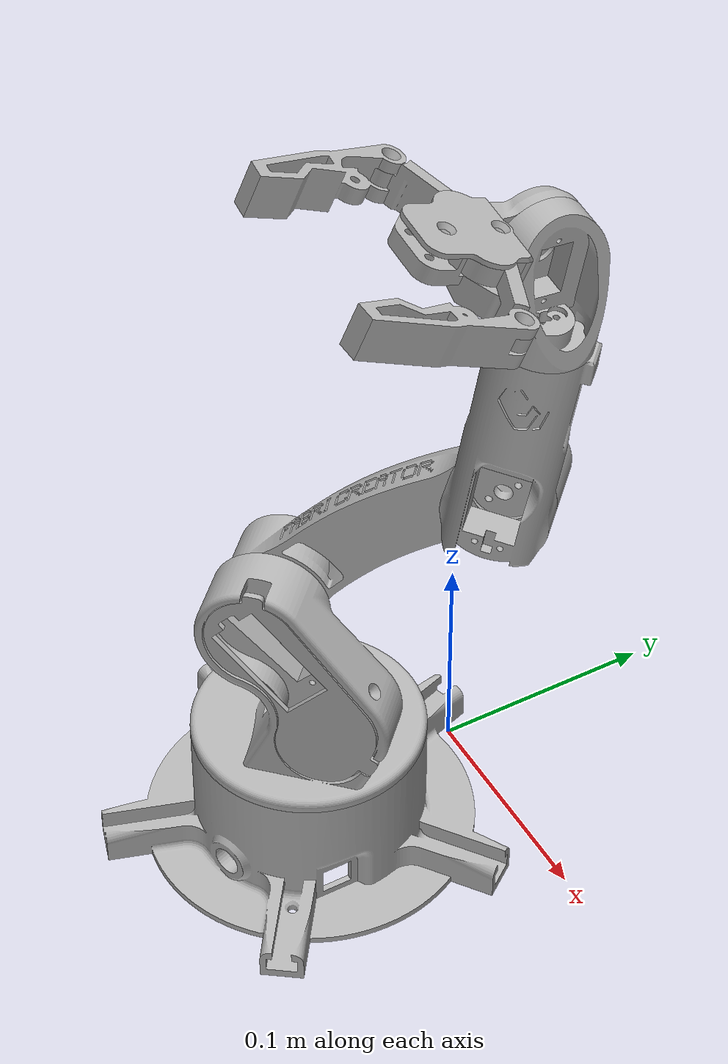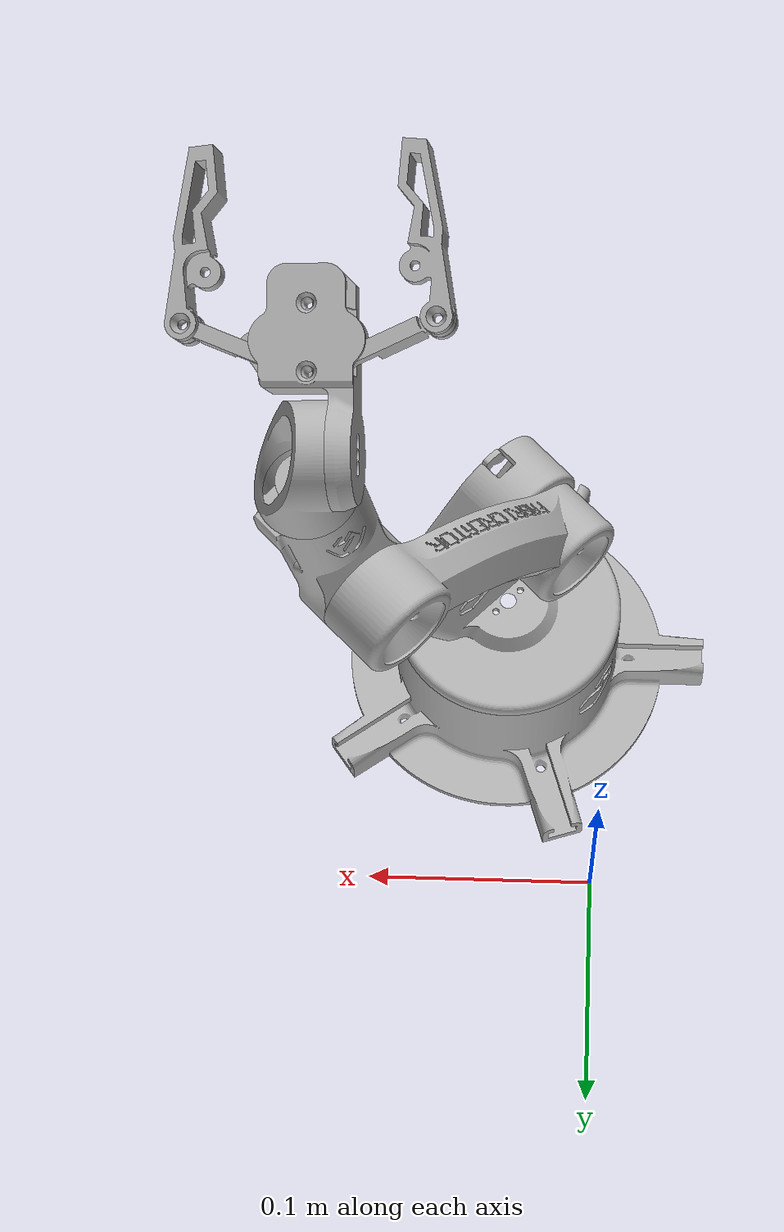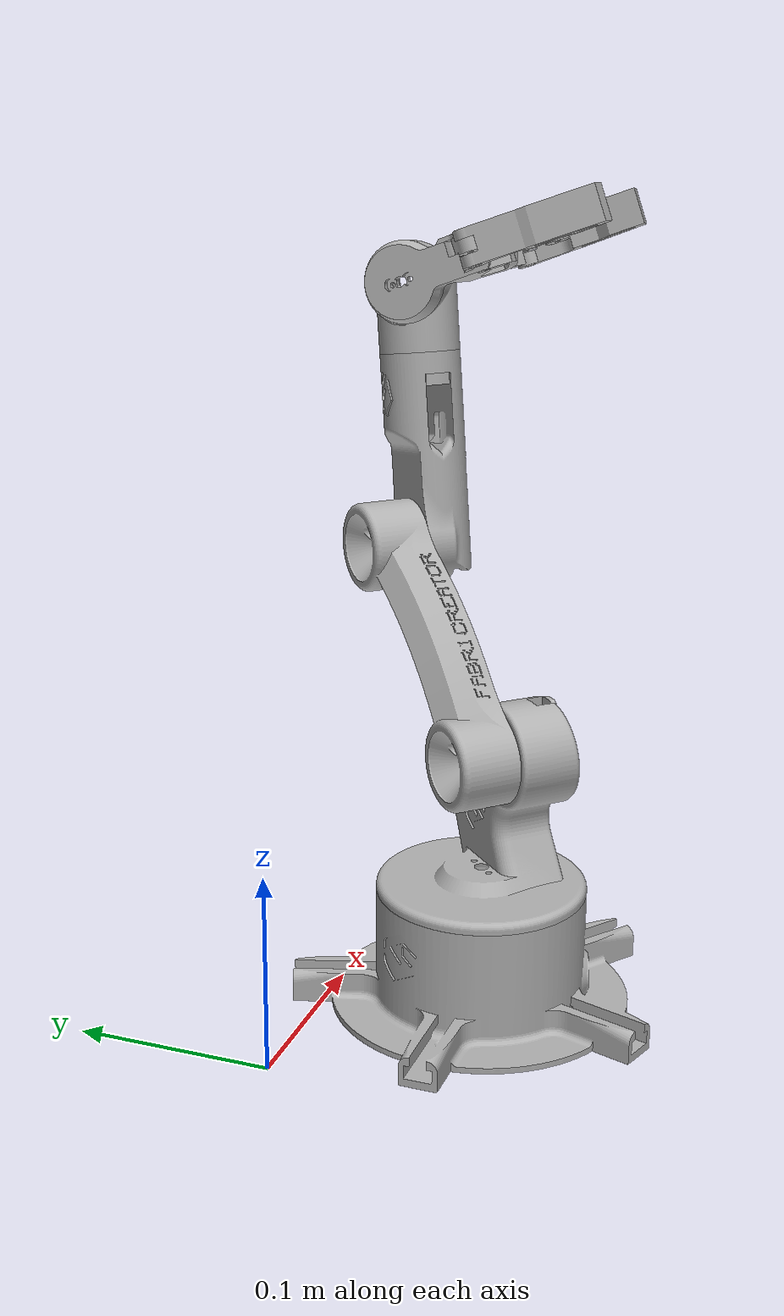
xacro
<?xml version="1.0"?>
<robot xmlns:xacro="http://www.ros.org/wiki/xacro" name="sabse_final_robo_dusra">
    <xacro:arg name="initial_positions_file" default="initial_positions.yaml" />

    <!-- Import sabse_final_robo_dusra urdf file -->
    <xacro:include filename="$(find sabse_final_robo_dusra_description)/urdf/sabse_final_robo_dusra.xacro" />

    <!-- Import control_xacro -->
    <xacro:include filename="sabse_final_robo_dusra.ros2_control.xacro" />

    <xacro:sabse_final_robo_dusra_ros2_control name="FakeSystem" initial_positions_file="$(arg initial_positions_file)"/>

</robot>

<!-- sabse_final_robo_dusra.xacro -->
<robot name="sabse_final_robo_dusra" xmlns:xacro="http://www.ros.org/wiki/xacro">

<xacro:include filename="$(find sabse_final_robo_dusra_description)/urdf/materials.xacro" />
<xacro:include filename="$(find sabse_final_robo_dusra_description)/urdf/sabse_final_robo_dusra.trans" />
<xacro:include filename="$(find sabse_final_robo_dusra_description)/urdf/sabse_final_robo_dusra.gazebo" />

<!-- Include ros2_control support -->
<xacro:arg name="use_ros2_control" default="false"/>
<xacro:if value="$(arg use_ros2_control)">
  <xacro:include filename="$(find sabse_final_robo_dusra_control)/config/sabse_final_robo_dusra_ros2_control.xacro" />
  <xacro:sabse_final_robo_dusra_ros2_control name="sabse_final_robo_dusra" prefix=""/>
</xacro:if>

<link name="base_link">
  <inertial>
    <origin xyz="0.039783283707411174 0.05583848628080968 0.09366101567392131" rpy="0 0 0"/>
    <mass value="0.912778498430855"/>
    <inertia ixx="0.001555" iyy="0.002663" izz="0.001642" ixy="1e-06" iyz="-6e-06" ixz="1.4e-05"/>
  </inertial>
  <visual>
    <origin xyz="0 0 0" rpy="0 0 0"/>
    <geometry>
      <mesh filename="file://$(find sabse_final_robo_dusra_description)/meshes/base_link.stl" scale="0.001 0.001 0.001"/>
    </geometry>
    <material name="silver"/>
  </visual>
  <collision>
    <origin xyz="0 0 0" rpy="0 0 0"/>
    <geometry>
      <mesh filename="file://$(find sabse_final_robo_dusra_description)/meshes/base_link.stl" scale="0.001 0.001 0.001"/>
    </geometry>
  </collision>
</link>

<link name="Pinza1_1">
  <inertial>
    <origin xyz="0.0041534278796213076 0.006440573334387356 0.029187575398014504" rpy="0 0 0"/>
    <mass value="0.05715084388035935"/>
    <inertia ixx="1.9e-05" iyy="1.8e-05" izz="5e-06" ixy="-1e-06" iyz="-5e-06" ixz="-3e-06"/>
  </inertial>
  <visual>
    <origin xyz="-0.067173 -0.388365 -0.072519" rpy="0 0 0"/>
    <geometry>
      <mesh filename="file://$(find sabse_final_robo_dusra_description)/meshes/Pinza1_1.stl" scale="0.001 0.001 0.001"/>
    </geometry>
    <material name="silver"/>
  </visual>
  <collision>
    <origin xyz="-0.067173 -0.388365 -0.072519" rpy="0 0 0"/>
    <geometry>
      <mesh filename="file://$(find sabse_final_robo_dusra_description)/meshes/Pinza1_1.stl" scale="0.001 0.001 0.001"/>
    </geometry>
  </collision>
</link>

<link name="Pinza2_1">
  <inertial>
    <origin xyz="-0.00305811056045599 0.007153515163413782 0.02900869072363836" rpy="0 0 0"/>
    <mass value="0.0574367398539114"/>
    <inertia ixx="2e-05" iyy="1.7e-05" izz="5e-06" ixy="1e-06" iyz="-6e-06" ixz="2e-06"/>
  </inertial>
  <visual>
    <origin xyz="-0.154514 -0.378683 -0.072372" rpy="0 0 0"/>
    <geometry>
      <mesh filename="file://$(find sabse_final_robo_dusra_description)/meshes/Pinza2_1.stl" scale="0.001 0.001 0.001"/>
    </geometry>
    <material name="silver"/>
  </visual>
  <collision>
    <origin xyz="-0.154514 -0.378683 -0.072372" rpy="0 0 0"/>
    <geometry>
      <mesh filename="file://$(find sabse_final_robo_dusra_description)/meshes/Pinza2_1.stl" scale="0.001 0.001 0.001"/>
    </geometry>
  </collision>
</link>

<link name="Engranaje1_1">
  <inertial>
    <origin xyz="-0.01112874902200403 0.0032587172699013456 0.0004920282025584338" rpy="0 0 0"/>
    <mass value="0.03206774948119643"/>
    <inertia ixx="1e-06" iyy="7e-06" izz="6e-06" ixy="0.0" iyz="-0.0" ixz="1e-06"/>
  </inertial>
  <visual>
    <origin xyz="-0.100337 -0.380167 -0.066515" rpy="0 0 0"/>
    <geometry>
      <mesh filename="file://$(find sabse_final_robo_dusra_description)/meshes/Engranaje1_1.stl" scale="0.001 0.001 0.001"/>
    </geometry>
    <material name="silver"/>
  </visual>
  <collision>
    <origin xyz="-0.100337 -0.380167 -0.066515" rpy="0 0 0"/>
    <geometry>
      <mesh filename="file://$(find sabse_final_robo_dusra_description)/meshes/Engranaje1_1.stl" scale="0.001 0.001 0.001"/>
    </geometry>
  </collision>
</link>

<link name="Engranaje2_1">
  <inertial>
    <origin xyz="0.013089157648934147 0.0007571228994763257 0.0006874712107331343" rpy="0 0 0"/>
    <mass value="0.02733538421745774"/>
    <inertia ixx="1e-06" iyy="6e-06" izz="5e-06" ixy="1e-06" iyz="0.0" ixz="-1e-06"/>
  </inertial>
  <visual>
    <origin xyz="-0.120312 -0.378003 -0.066628" rpy="0 0 0"/>
    <geometry>
      <mesh filename="file://$(find sabse_final_robo_dusra_description)/meshes/Engranaje2_1.stl" scale="0.001 0.001 0.001"/>
    </geometry>
    <material name="silver"/>
  </visual>
  <collision>
    <origin xyz="-0.120312 -0.378003 -0.066628" rpy="0 0 0"/>
    <geometry>
      <mesh filename="file://$(find sabse_final_robo_dusra_description)/meshes/Engranaje2_1.stl" scale="0.001 0.001 0.001"/>
    </geometry>
  </collision>
</link>

<link name="Base_de_la_garra_1">
  <inertial>
    <origin xyz="0.002785228701749534 0.0077137898935638605 0.020358586259639454" rpy="0 0 0"/>
    <mass value="0.15628020369016074"/>
    <inertia ixx="8.1e-05" iyy="8.1e-05" izz="3.2e-05" ixy="-6e-06" iyz="-2.1e-05" ixz="-1.7e-05"/>
  </inertial>
  <visual>
    <origin xyz="-0.101797 -0.363447 -0.031829" rpy="0 0 0"/>
    <geometry>
      <mesh filename="file://$(find sabse_final_robo_dusra_description)/meshes/Base_de_la_garra_1.stl" scale="0.001 0.001 0.001"/>
    </geometry>
    <material name="silver"/>
  </visual>
  <collision>
    <origin xyz="-0.101797 -0.363447 -0.031829" rpy="0 0 0"/>
    <geometry>
      <mesh filename="file://$(find sabse_final_robo_dusra_description)/meshes/Base_de_la_garra_1.stl" scale="0.001 0.001 0.001"/>
    </geometry>
  </collision>
</link>

<!-- USE BARRA ONLY WHEN YOU ARE IMPLEMENTING THE HARDWARE, FOR SIMULATION JUST JUST PINZA WITH ENGRANAJE -->

<link name="Muneca_1">
  <inertial>
    <origin xyz="-0.0032558072855517345 0.02176378321714928 -0.0021491165878402413" rpy="0 0 0"/>
    <mass value="0.1688382109185934"/>
    <inertia ixx="5.8e-05" iyy="3.1e-05" izz="4.4e-05" ixy="1e-06" iyz="1e-06" ixz="-1e-06"/>
  </inertial>
  <visual>
    <origin xyz="-0.112462 -0.329818 -0.035468" rpy="0 0 0"/>
    <geometry>
      <mesh filename="file://$(find sabse_final_robo_dusra_description)/meshes/Muneca_1.stl" scale="0.001 0.001 0.001"/>
    </geometry>
    <material name="silver"/>
  </visual>
  <collision>
    <origin xyz="-0.112462 -0.329818 -0.035468" rpy="0 0 0"/>
    <geometry>
      <mesh filename="file://$(find sabse_final_robo_dusra_description)/meshes/Muneca_1.stl" scale="0.001 0.001 0.001"/>
    </geometry>
  </collision>
</link>

<link name="Seguro_de_servomotor_1">
  <inertial>
    <origin xyz="0.001284694177888429 -0.0034059088939957793 -0.0012912911092722787" rpy="0 0 0"/>
    <mass value="0.004322628377632507"/>
    <inertia ixx="0.0" iyy="0.0" izz="0.0" ixy="0.0" iyz="-0.0" ixz="-0.0"/>
  </inertial>
  <visual>
    <origin xyz="-0.100474 -0.322303 -0.047563" rpy="0 0 0"/>
    <geometry>
      <mesh filename="file://$(find sabse_final_robo_dusra_description)/meshes/Seguro_de_servomotor_1.stl" scale="0.001 0.001 0.001"/>
    </geometry>
    <material name="silver"/>
  </visual>
  <collision>
    <origin xyz="-0.100474 -0.322303 -0.047563" rpy="0 0 0"/>
    <geometry>
      <mesh filename="file://$(find sabse_final_robo_dusra_description)/meshes/Seguro_de_servomotor_1.stl" scale="0.001 0.001 0.001"/>
    </geometry>
  </collision>
</link>

<link name="Eje_Central_1">
  <inertial>
    <origin xyz="0.006159545272237638 0.03082152507523024 0.0044873701217724715" rpy="0 0 0"/>
    <mass value="0.7834341261446325"/>
    <inertia ixx="0.000985" iyy="0.000633" izz="0.001" ixy="3e-06" iyz="-0.000135" ixz="8.4e-05"/>
  </inertial>
  <visual>
    <origin xyz="-0.040779 -0.093108 -0.09288" rpy="0 0 0"/>
    <geometry>
      <mesh filename="file://$(find sabse_final_robo_dusra_description)/meshes/Eje_Central_1.stl" scale="0.001 0.001 0.001"/>
    </geometry>
    <material name="silver"/>
  </visual>
  <collision>
    <origin xyz="-0.040779 -0.093108 -0.09288" rpy="0 0 0"/>
    <geometry>
      <mesh filename="file://$(find sabse_final_robo_dusra_description)/meshes/Eje_Central_1.stl" scale="0.001 0.001 0.001"/>
    </geometry>
  </collision>
</link>

<link name="Tapa_Eje_1">
  <inertial>
    <origin xyz="-0.003454760797893891 0.007073481483932859 0.053702667511806794" rpy="0 0 0"/>
    <mass value="0.04795235524040736"/>
    <inertia ixx="3.2e-05" iyy="1.5e-05" izz="3.3e-05" ixy="9e-06" iyz="-6e-06" ixz="7e-06"/>
  </inertial>
  <visual>
    <origin xyz="-0.072046 -0.12896 -0.05286" rpy="0 0 0"/>
    <geometry>
      <mesh filename="file://$(find sabse_final_robo_dusra_description)/meshes/Tapa_Eje_1.stl" scale="0.001 0.001 0.001"/>
    </geometry>
    <material name="silver"/>
  </visual>
  <collision>
    <origin xyz="-0.072046 -0.12896 -0.05286" rpy="0 0 0"/>
    <geometry>
      <mesh filename="file://$(find sabse_final_robo_dusra_description)/meshes/Tapa_Eje_1.stl" scale="0.001 0.001 0.001"/>
    </geometry>
  </collision>
</link>

<link name="Tapa_garra_1">
  <inertial>
    <origin xyz="-8.89695752282621e-05 -0.0020918341657099604 -0.008261929232570978" rpy="0 0 0"/>
    <mass value="0.01964609230254284"/>
    <inertia ixx="2e-06" iyy="4e-06" izz="2e-06" ixy="0.0" iyz="-1e-06" ixz="-0.0"/>
  </inertial>
  <visual>
    <origin xyz="-0.111463 -0.390255 -0.075692" rpy="0 0 0"/>
    <geometry>
      <mesh filename="file://$(find sabse_final_robo_dusra_description)/meshes/Tapa_garra_1.stl" scale="0.001 0.001 0.001"/>
    </geometry>
    <material name="silver"/>
  </visual>
  <collision>
    <origin xyz="-0.111463 -0.390255 -0.075692" rpy="0 0 0"/>
    <geometry>
      <mesh filename="file://$(find sabse_final_robo_dusra_description)/meshes/Tapa_garra_1.stl" scale="0.001 0.001 0.001"/>
    </geometry>
  </collision>
</link>

<link name="Antebrazo__4__1">
  <inertial>
    <origin xyz="0.022815179638928658 0.04069961389989363 -0.03992332224284366" rpy="0 0 0"/>
    <mass value="0.6612420873424198"/>
    <inertia ixx="0.00143" iyy="0.001166" izz="0.001421" ixy="-0.000626" iyz="0.000627" ixz="0.000544"/>
  </inertial>
  <visual>
    <origin xyz="-0.03098 -0.163384 -0.102765" rpy="0 0 0"/>
    <geometry>
      <mesh filename="file://$(find sabse_final_robo_dusra_description)/meshes/Antebrazo__4__1.stl" scale="0.001 0.001 0.001"/>
    </geometry>
    <material name="silver"/>
  </visual>
  <collision>
    <origin xyz="-0.03098 -0.163384 -0.102765" rpy="0 0 0"/>
    <geometry>
      <mesh filename="file://$(find sabse_final_robo_dusra_description)/meshes/Antebrazo__4__1.stl" scale="0.001 0.001 0.001"/>
    </geometry>
  </collision>
</link>

<link name="Brazo_1">
  <inertial>
    <origin xyz="0.010912471621770586 0.0403740010561964 0.0012811625990998346" rpy="0 0 0"/>
    <mass value="0.4123818105357045"/>
    <inertia ixx="0.000454" iyy="9.3e-05" izz="0.000455" ixy="-2.9e-05" iyz="3.7e-05" ixz="1.3e-05"/>
  </inertial>
  <visual>
    <origin xyz="-0.095327 -0.241127 -0.037839" rpy="0 0 0"/>
    <geometry>
      <mesh filename="file://$(find sabse_final_robo_dusra_description)/meshes/Brazo_1.stl" scale="0.001 0.001 0.001"/>
    </geometry>
    <material name="silver"/>
  </visual>
  <collision>
    <origin xyz="-0.095327 -0.241127 -0.037839" rpy="0 0 0"/>
    <geometry>
      <mesh filename="file://$(find sabse_final_robo_dusra_description)/meshes/Brazo_1.stl" scale="0.001 0.001 0.001"/>
    </geometry>
  </collision>
</link>

<link name="world">

</link>

<joint name="world_base" type="fixed">
  <origin xyz="0.0 0.0 0.0" rpy="${pi/2} 0.0 0.0"/>
  <parent link="world"/>
  <child link="base_link"/>
  <axis xyz="0.0 0.0 0.0"/>
  <limit lower="0.0" upper="0.0" effort="0.0" velocity="0.0"/>
</joint>

<!-- Gripper joint elements -->
<!-- MODIFIED SECTION: Changed fixed joints to revolute for fingers -->
<joint name="finger1_joint" type="revolute">
  <origin xyz="-0.033164 0.008198 0.006004" rpy="0 0 0"/>
  <parent link="Engranaje1_1"/>
  <child link="Pinza1_1"/>
  <axis xyz="0.10267 0.928954 -0.355673"/>
  <limit lower="-0.6" upper="0.6" effort="10" velocity="1.0"/>
  <mimic joint="gripper_joint" multiplier="1" offset="0"/>
</joint>

<joint name="finger2_joint" type="revolute">
  <origin xyz="0.034202 0.00068 0.005744" rpy="0 0 0"/>
  <parent link="Engranaje2_1"/>
  <child link="Pinza2_1"/>
  <axis xyz="-0.10267 -0.928954 0.355673"/>
  <limit lower="-0.6" upper="0.6" effort="10" velocity="1.0"/>
  <mimic joint="gripper_joint" multiplier="1" offset="0"/>
</joint>

<!-- Main actuator joint for the first gear -->
<joint name="gripper_joint" type="revolute">
  <origin xyz="-0.00146 0.01672 0.034686" rpy="0 0 0"/>
  <parent link="Base_de_la_garra_1"/>
  <child link="Engranaje1_1"/>
  <axis xyz="-0.10267 -0.928954 0.355673"/>
  <limit lower="-0.6" upper="0.6" effort="10" velocity="1.0"/>
</joint>

<!-- Second gear mimics the first gear but with negative multiplier (moves in opposite direction) -->
<joint name="gear2_joint" type="revolute">
  <origin xyz="0.018515 0.014556 0.034799" rpy="0 0 0"/>
  <parent link="Base_de_la_garra_1"/>
  <child link="Engranaje2_1"/>
  <axis xyz="0.10267 0.928954 -0.355673"/>
  <limit lower="-0.6" upper="0.6" effort="10" velocity="1.0"/>
  <mimic joint="gripper_joint" multiplier="1" offset="0"/>
</joint>

<!-- MODIFIED: Add connection between bars and base -->
<!-- First add connections for bar2 (one end to pinza2, one end to base) -->

<!-- Similar for bar1 -->

<!-- Add virtual connection points for the bars to the base -->
<!-- These are needed to complete the four-bar linkage mechanisms -->

<!-- Arm elements -->

<joint name="axle_cap_joint" type="fixed">
  <origin xyz="0.031267 0.035852 -0.04002" rpy="0 0 0"/>
  <parent link="Eje_Central_1"/>
  <child link="Tapa_Eje_1"/>
</joint>

<joint name="gripper_cap_joint" type="fixed">
  <origin xyz="0.009666 0.026808 0.043863" rpy="0 0 0"/>
  <parent link="Base_de_la_garra_1"/>
  <child link="Tapa_garra_1"/>
</joint>

<joint name="servo_mount_joint" type="fixed">
  <origin xyz="0.005147 0.081176 0.009724" rpy="0 0 0"/>
  <parent link="Brazo_1"/>
  <child link="Seguro_de_servomotor_1"/>
</joint>

<joint name="wrist_joint" type="revolute">
  <origin xyz="-0.010665 0.033629 -0.003639" rpy="0 0 0"/>
  <parent link="Muneca_1"/>
  <child link="Base_de_la_garra_1"/>
  <axis xyz="-0.994335 0.105728 -0.010887"/>
  <limit lower="-0.8" upper="0.8" effort="10" velocity="1.0"/>
</joint>

<joint name="elbow_joint" type="revolute">
  <origin xyz="0.017135 0.088691 -0.002371" rpy="0 0 0"/>
  <parent link="Brazo_1"/>
  <child link="Muneca_1"/>
  <axis xyz="0.106285 0.988538 -0.107219"/>
  <limit lower="-0.840" upper="0.840" effort="10" velocity="1.0"/>
  <initial_position></initial_position>
</joint>

<joint name="base_rotation_joint" type="revolute">
  <origin xyz="0.040779 0.093108 0.09288" rpy="0 0 0"/>
  <parent link="base_link"/>
  <child link="Eje_Central_1"/>
  <axis xyz="0.0 1.0 -0.0"/>
  <limit lower="-1.57" upper="1.57" effort="10" velocity="1.0"/>
</joint>

<joint name="shoulder_joint" type="revolute">
  <origin xyz="-0.009799 0.070276 0.009885" rpy="0 0 0"/>
  <parent link="Eje_Central_1"/>
  <child link="Antebrazo__4__1"/>
  <axis xyz="0.710191 -0.0 0.704009"/>
  <limit lower="-1.57" upper="1.57" effort="10" velocity="1.0"/>
</joint>

<joint name="forearm_joint" type="revolute">
  <origin xyz="0.064347 0.077743 -0.064926" rpy="0 0 0"/>
  <parent link="Antebrazo__4__1"/>
  <child link="Brazo_1"/>
  <axis xyz="-0.710191 0.0 -0.704009"/>
  <limit lower="-1.231" upper="1.231" effort="10" velocity="1.0"/>
   <initial_position>-1.1</initial_position>
</joint>

</robot>

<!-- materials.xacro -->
<robot name="sabse_final_robo_dusra" xmlns:xacro="http://www.ros.org/wiki/xacro" >

<material name="silver">
  <color rgba="0.700 0.700 0.700 1.000"/>
</material>

</robot>

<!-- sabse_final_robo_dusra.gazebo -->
<robot name="sabse_final_robo_dusra" xmlns:xacro="http://www.ros.org/wiki/xacro" >

<xacro:property name="body_color" value="Gazebo/Silver" />

<gazebo>
  <plugin name="control" filename="libgazebo_ros_control.so"/>
</gazebo>
<gazebo reference="base_link">
  <material>${body_color}</material>
  <mu1>0.2</mu1>
  <mu2>0.2</mu2>
  <self_collide>true</self_collide>
  <gravity>true</gravity>
</gazebo>

<gazebo reference="Pinza1_1">
  <material>${body_color}</material>
  <mu1>0.2</mu1>
  <mu2>0.2</mu2>
  <self_collide>true</self_collide>
</gazebo>

<gazebo reference="Pinza2_1">
  <material>${body_color}</material>
  <mu1>0.2</mu1>
  <mu2>0.2</mu2>
  <self_collide>true</self_collide>
</gazebo>

<gazebo reference="Engranaje1_1">
  <material>${body_color}</material>
  <mu1>0.2</mu1>
  <mu2>0.2</mu2>
  <self_collide>true</self_collide>
</gazebo>

<gazebo reference="Engranaje2_1">
  <material>${body_color}</material>
  <mu1>0.2</mu1>
  <mu2>0.2</mu2>
  <self_collide>true</self_collide>
</gazebo>

<gazebo reference="Base_de_la_garra_1">
  <material>${body_color}</material>
  <mu1>0.2</mu1>
  <mu2>0.2</mu2>
  <self_collide>true</self_collide>
</gazebo>

<gazebo reference="Barra2_1">
  <material>${body_color}</material>
  <mu1>0.2</mu1>
  <mu2>0.2</mu2>
  <self_collide>true</self_collide>
</gazebo>

<gazebo reference="Barra1_1">
  <material>${body_color}</material>
  <mu1>0.2</mu1>
  <mu2>0.2</mu2>
  <self_collide>true</self_collide>
</gazebo>

<gazebo reference="Barra2_1">
  <material>${body_color}</material>
  <mu1>0.2</mu1>
  <mu2>0.2</mu2>
  <self_collide>true</self_collide>
</gazebo>

<gazebo reference="Barra1_1">
  <material>${body_color}</material>
  <mu1>0.2</mu1>
  <mu2>0.2</mu2>
  <self_collide>true</self_collide>
</gazebo>

<gazebo reference="Muneca_1">
  <material>${body_color}</material>
  <mu1>0.2</mu1>
  <mu2>0.2</mu2>
  <self_collide>true</self_collide>
</gazebo>

<gazebo reference="Seguro_de_servomotor_1">
  <material>${body_color}</material>
  <mu1>0.2</mu1>
  <mu2>0.2</mu2>
  <self_collide>true</self_collide>
</gazebo>

<gazebo reference="Eje_Central_1">
  <material>${body_color}</material>
  <mu1>0.2</mu1>
  <mu2>0.2</mu2>
  <self_collide>true</self_collide>
</gazebo>

<gazebo reference="Tapa_Eje_1">
  <material>${body_color}</material>
  <mu1>0.2</mu1>
  <mu2>0.2</mu2>
  <self_collide>true</self_collide>
</gazebo>

<gazebo reference="Tapa_garra_1">
  <material>${body_color}</material>
  <mu1>0.2</mu1>
  <mu2>0.2</mu2>
  <self_collide>true</self_collide>
</gazebo>

<gazebo reference="Antebrazo__4__1">
  <material>${body_color}</material>
  <mu1>0.2</mu1>
  <mu2>0.2</mu2>
  <self_collide>true</self_collide>
</gazebo>

<gazebo reference="Brazo_1">
  <material>${body_color}</material>
  <mu1>0.2</mu1>
  <mu2>0.2</mu2>
  <self_collide>true</self_collide>
</gazebo>

</robot>
